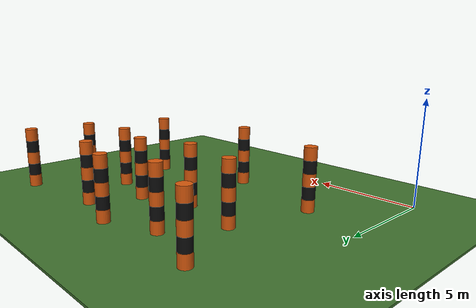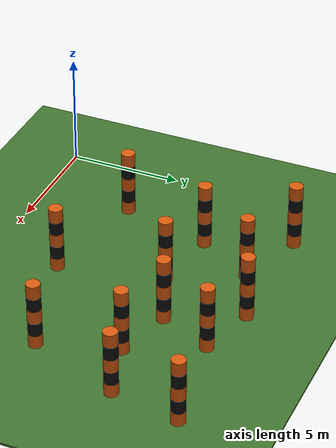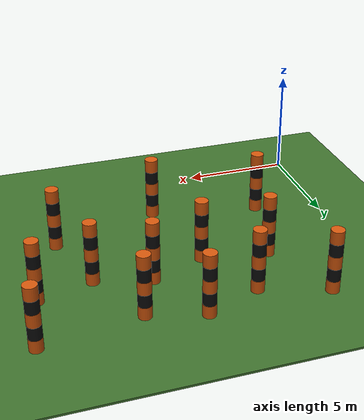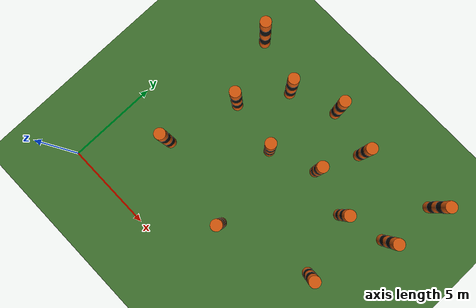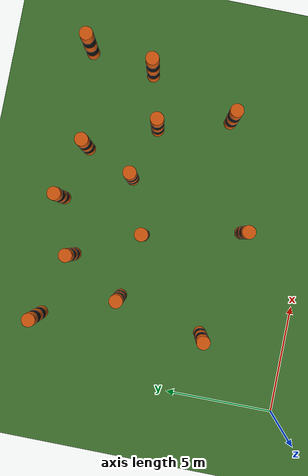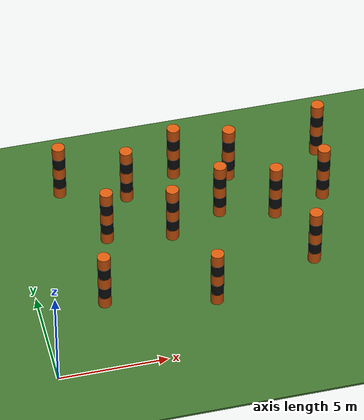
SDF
<sdf version="1.6">
 <world name="medium_forest_goal_13_10_striped_poles">
  <model name="ground">
   <static>1</static>
   <link name="link">
    <collision name="collision"><geometry><box><size>45 35 0.1</size></box></geometry></collision>
    <visual name="visual">
     <geometry><box><size>45 35 0.1</size></box></geometry>
     <material><ambient>0.25 0.45 0.18 1</ambient><diffuse>0.25 0.45 0.18 1</diffuse></material>
    </visual>
   </link>
   <pose>3 2 -0.05 0 0 0</pose>
  </model>
  <model name="striped_obs_12">
   <static>true</static>
   <pose>2.500 11.500 0 0 0 0</pose>
   <link name="link">
    <collision name="collision">
     <pose>0 0 1.5 0 0 0</pose>
     <geometry><cylinder><radius>0.30</radius><length>3.0</length></cylinder></geometry>
     <surface>
      <contact><ode><kp>1000000</kp><kd>100</kd><max_vel>0.01</max_vel><min_depth>0.001</min_depth></ode></contact>
      <friction><ode><mu>1.0</mu><mu2>1.0</mu2></ode></friction>
     </surface>
    </collision>
    <visual name="band_1">
     <pose>0 0 0.3 0 0 0</pose>
     <geometry><cylinder><radius>0.30</radius><length>0.6</length></cylinder></geometry>
     <material>
      <ambient>0.85 0.35 0.05 1</ambient>
      <diffuse>0.85 0.35 0.05 1</diffuse>
      <specular>0.02 0.02 0.02 1</specular>
     </material>
    </visual>
    <visual name="band_2">
     <pose>0 0 0.9 0 0 0</pose>
     <geometry><cylinder><radius>0.30</radius><length>0.6</length></cylinder></geometry>
     <material>
      <ambient>0.05 0.05 0.05 1</ambient>
      <diffuse>0.05 0.05 0.05 1</diffuse>
      <specular>0.02 0.02 0.02 1</specular>
     </material>
    </visual>
    <visual name="band_3">
     <pose>0 0 1.5 0 0 0</pose>
     <geometry><cylinder><radius>0.30</radius><length>0.6</length></cylinder></geometry>
     <material>
      <ambient>0.85 0.35 0.05 1</ambient>
      <diffuse>0.85 0.35 0.05 1</diffuse>
      <specular>0.02 0.02 0.02 1</specular>
     </material>
    </visual>
    <visual name="band_4">
     <pose>0 0 2.1 0 0 0</pose>
     <geometry><cylinder><radius>0.30</radius><length>0.6</length></cylinder></geometry>
     <material>
      <ambient>0.05 0.05 0.05 1</ambient>
      <diffuse>0.05 0.05 0.05 1</diffuse>
      <specular>0.02 0.02 0.02 1</specular>
     </material>
    </visual>
    <visual name="band_5">
     <pose>0 0 2.7 0 0 0</pose>
     <geometry><cylinder><radius>0.30</radius><length>0.6</length></cylinder></geometry>
     <material>
      <ambient>0.85 0.35 0.05 1</ambient>
      <diffuse>0.85 0.35 0.05 1</diffuse>
      <specular>0.02 0.02 0.02 1</specular>
     </material>
    </visual>
   </link>
  </model>
  <model name="striped_obs_13">
   <static>true</static>
   <pose>4.000 8.000 0 0 0 0</pose>
   <link name="link">
    <collision name="collision">
     <pose>0 0 1.5 0 0 0</pose>
     <geometry><cylinder><radius>0.30</radius><length>3.0</length></cylinder></geometry>
     <surface>
      <contact><ode><kp>1000000</kp><kd>100</kd><max_vel>0.01</max_vel><min_depth>0.001</min_depth></ode></contact>
      <friction><ode><mu>1.0</mu><mu2>1.0</mu2></ode></friction>
     </surface>
    </collision>
    <visual name="band_1">
     <pose>0 0 0.3 0 0 0</pose>
     <geometry><cylinder><radius>0.30</radius><length>0.6</length></cylinder></geometry>
     <material>
      <ambient>0.85 0.35 0.05 1</ambient>
      <diffuse>0.85 0.35 0.05 1</diffuse>
      <specular>0.02 0.02 0.02 1</specular>
     </material>
    </visual>
    <visual name="band_2">
     <pose>0 0 0.9 0 0 0</pose>
     <geometry><cylinder><radius>0.30</radius><length>0.6</length></cylinder></geometry>
     <material>
      <ambient>0.05 0.05 0.05 1</ambient>
      <diffuse>0.05 0.05 0.05 1</diffuse>
      <specular>0.02 0.02 0.02 1</specular>
     </material>
    </visual>
    <visual name="band_3">
     <pose>0 0 1.5 0 0 0</pose>
     <geometry><cylinder><radius>0.30</radius><length>0.6</length></cylinder></geometry>
     <material>
      <ambient>0.85 0.35 0.05 1</ambient>
      <diffuse>0.85 0.35 0.05 1</diffuse>
      <specular>0.02 0.02 0.02 1</specular>
     </material>
    </visual>
    <visual name="band_4">
     <pose>0 0 2.1 0 0 0</pose>
     <geometry><cylinder><radius>0.30</radius><length>0.6</length></cylinder></geometry>
     <material>
      <ambient>0.05 0.05 0.05 1</ambient>
      <diffuse>0.05 0.05 0.05 1</diffuse>
      <specular>0.02 0.02 0.02 1</specular>
     </material>
    </visual>
    <visual name="band_5">
     <pose>0 0 2.7 0 0 0</pose>
     <geometry><cylinder><radius>0.30</radius><length>0.6</length></cylinder></geometry>
     <material>
      <ambient>0.85 0.35 0.05 1</ambient>
      <diffuse>0.85 0.35 0.05 1</diffuse>
      <specular>0.02 0.02 0.02 1</specular>
     </material>
    </visual>
   </link>
  </model>
  <model name="striped_obs_14">
   <static>true</static>
   <pose>5.500 10.500 0 0 0 0</pose>
   <link name="link">
    <collision name="collision">
     <pose>0 0 1.5 0 0 0</pose>
     <geometry><cylinder><radius>0.30</radius><length>3.0</length></cylinder></geometry>
     <surface>
      <contact><ode><kp>1000000</kp><kd>100</kd><max_vel>0.01</max_vel><min_depth>0.001</min_depth></ode></contact>
      <friction><ode><mu>1.0</mu><mu2>1.0</mu2></ode></friction>
     </surface>
    </collision>
    <visual name="band_1">
     <pose>0 0 0.3 0 0 0</pose>
     <geometry><cylinder><radius>0.30</radius><length>0.6</length></cylinder></geometry>
     <material>
      <ambient>0.85 0.35 0.05 1</ambient>
      <diffuse>0.85 0.35 0.05 1</diffuse>
      <specular>0.02 0.02 0.02 1</specular>
     </material>
    </visual>
    <visual name="band_2">
     <pose>0 0 0.9 0 0 0</pose>
     <geometry><cylinder><radius>0.30</radius><length>0.6</length></cylinder></geometry>
     <material>
      <ambient>0.05 0.05 0.05 1</ambient>
      <diffuse>0.05 0.05 0.05 1</diffuse>
      <specular>0.02 0.02 0.02 1</specular>
     </material>
    </visual>
    <visual name="band_3">
     <pose>0 0 1.5 0 0 0</pose>
     <geometry><cylinder><radius>0.30</radius><length>0.6</length></cylinder></geometry>
     <material>
      <ambient>0.85 0.35 0.05 1</ambient>
      <diffuse>0.85 0.35 0.05 1</diffuse>
      <specular>0.02 0.02 0.02 1</specular>
     </material>
    </visual>
    <visual name="band_4">
     <pose>0 0 2.1 0 0 0</pose>
     <geometry><cylinder><radius>0.30</radius><length>0.6</length></cylinder></geometry>
     <material>
      <ambient>0.05 0.05 0.05 1</ambient>
      <diffuse>0.05 0.05 0.05 1</diffuse>
      <specular>0.02 0.02 0.02 1</specular>
     </material>
    </visual>
    <visual name="band_5">
     <pose>0 0 2.7 0 0 0</pose>
     <geometry><cylinder><radius>0.30</radius><length>0.6</length></cylinder></geometry>
     <material>
      <ambient>0.85 0.35 0.05 1</ambient>
      <diffuse>0.85 0.35 0.05 1</diffuse>
      <specular>0.02 0.02 0.02 1</specular>
     </material>
    </visual>
   </link>
  </model>
  <model name="striped_obs_15">
   <static>true</static>
   <pose>7.000 7.500 0 0 0 0</pose>
   <link name="link">
    <collision name="collision">
     <pose>0 0 1.5 0 0 0</pose>
     <geometry><cylinder><radius>0.30</radius><length>3.0</length></cylinder></geometry>
     <surface>
      <contact><ode><kp>1000000</kp><kd>100</kd><max_vel>0.01</max_vel><min_depth>0.001</min_depth></ode></contact>
      <friction><ode><mu>1.0</mu><mu2>1.0</mu2></ode></friction>
     </surface>
    </collision>
    <visual name="band_1">
     <pose>0 0 0.3 0 0 0</pose>
     <geometry><cylinder><radius>0.30</radius><length>0.6</length></cylinder></geometry>
     <material>
      <ambient>0.85 0.35 0.05 1</ambient>
      <diffuse>0.85 0.35 0.05 1</diffuse>
      <specular>0.02 0.02 0.02 1</specular>
     </material>
    </visual>
    <visual name="band_2">
     <pose>0 0 0.9 0 0 0</pose>
     <geometry><cylinder><radius>0.30</radius><length>0.6</length></cylinder></geometry>
     <material>
      <ambient>0.05 0.05 0.05 1</ambient>
      <diffuse>0.05 0.05 0.05 1</diffuse>
      <specular>0.02 0.02 0.02 1</specular>
     </material>
    </visual>
    <visual name="band_3">
     <pose>0 0 1.5 0 0 0</pose>
     <geometry><cylinder><radius>0.30</radius><length>0.6</length></cylinder></geometry>
     <material>
      <ambient>0.85 0.35 0.05 1</ambient>
      <diffuse>0.85 0.35 0.05 1</diffuse>
      <specular>0.02 0.02 0.02 1</specular>
     </material>
    </visual>
    <visual name="band_4">
     <pose>0 0 2.1 0 0 0</pose>
     <geometry><cylinder><radius>0.30</radius><length>0.6</length></cylinder></geometry>
     <material>
      <ambient>0.05 0.05 0.05 1</ambient>
      <diffuse>0.05 0.05 0.05 1</diffuse>
      <specular>0.02 0.02 0.02 1</specular>
     </material>
    </visual>
    <visual name="band_5">
     <pose>0 0 2.7 0 0 0</pose>
     <geometry><cylinder><radius>0.30</radius><length>0.6</length></cylinder></geometry>
     <material>
      <ambient>0.85 0.35 0.05 1</ambient>
      <diffuse>0.85 0.35 0.05 1</diffuse>
      <specular>0.02 0.02 0.02 1</specular>
     </material>
    </visual>
   </link>
  </model>
  <model name="striped_obs_16">
   <static>true</static>
   <pose>8.000 11.500 0 0 0 0</pose>
   <link name="link">
    <collision name="collision">
     <pose>0 0 1.5 0 0 0</pose>
     <geometry><cylinder><radius>0.30</radius><length>3.0</length></cylinder></geometry>
     <surface>
      <contact><ode><kp>1000000</kp><kd>100</kd><max_vel>0.01</max_vel><min_depth>0.001</min_depth></ode></contact>
      <friction><ode><mu>1.0</mu><mu2>1.0</mu2></ode></friction>
     </surface>
    </collision>
    <visual name="band_1">
     <pose>0 0 0.3 0 0 0</pose>
     <geometry><cylinder><radius>0.30</radius><length>0.6</length></cylinder></geometry>
     <material>
      <ambient>0.85 0.35 0.05 1</ambient>
      <diffuse>0.85 0.35 0.05 1</diffuse>
      <specular>0.02 0.02 0.02 1</specular>
     </material>
    </visual>
    <visual name="band_2">
     <pose>0 0 0.9 0 0 0</pose>
     <geometry><cylinder><radius>0.30</radius><length>0.6</length></cylinder></geometry>
     <material>
      <ambient>0.05 0.05 0.05 1</ambient>
      <diffuse>0.05 0.05 0.05 1</diffuse>
      <specular>0.02 0.02 0.02 1</specular>
     </material>
    </visual>
    <visual name="band_3">
     <pose>0 0 1.5 0 0 0</pose>
     <geometry><cylinder><radius>0.30</radius><length>0.6</length></cylinder></geometry>
     <material>
      <ambient>0.85 0.35 0.05 1</ambient>
      <diffuse>0.85 0.35 0.05 1</diffuse>
      <specular>0.02 0.02 0.02 1</specular>
     </material>
    </visual>
    <visual name="band_4">
     <pose>0 0 2.1 0 0 0</pose>
     <geometry><cylinder><radius>0.30</radius><length>0.6</length></cylinder></geometry>
     <material>
      <ambient>0.05 0.05 0.05 1</ambient>
      <diffuse>0.05 0.05 0.05 1</diffuse>
      <specular>0.02 0.02 0.02 1</specular>
     </material>
    </visual>
    <visual name="band_5">
     <pose>0 0 2.7 0 0 0</pose>
     <geometry><cylinder><radius>0.30</radius><length>0.6</length></cylinder></geometry>
     <material>
      <ambient>0.85 0.35 0.05 1</ambient>
      <diffuse>0.85 0.35 0.05 1</diffuse>
      <specular>0.02 0.02 0.02 1</specular>
     </material>
    </visual>
   </link>
  </model>
  <model name="striped_obs_17">
   <static>true</static>
   <pose>9.500 8.500 0 0 0 0</pose>
   <link name="link">
    <collision name="collision">
     <pose>0 0 1.5 0 0 0</pose>
     <geometry><cylinder><radius>0.30</radius><length>3.0</length></cylinder></geometry>
     <surface>
      <contact><ode><kp>1000000</kp><kd>100</kd><max_vel>0.01</max_vel><min_depth>0.001</min_depth></ode></contact>
      <friction><ode><mu>1.0</mu><mu2>1.0</mu2></ode></friction>
     </surface>
    </collision>
    <visual name="band_1">
     <pose>0 0 0.3 0 0 0</pose>
     <geometry><cylinder><radius>0.30</radius><length>0.6</length></cylinder></geometry>
     <material>
      <ambient>0.85 0.35 0.05 1</ambient>
      <diffuse>0.85 0.35 0.05 1</diffuse>
      <specular>0.02 0.02 0.02 1</specular>
     </material>
    </visual>
    <visual name="band_2">
     <pose>0 0 0.9 0 0 0</pose>
     <geometry><cylinder><radius>0.30</radius><length>0.6</length></cylinder></geometry>
     <material>
      <ambient>0.05 0.05 0.05 1</ambient>
      <diffuse>0.05 0.05 0.05 1</diffuse>
      <specular>0.02 0.02 0.02 1</specular>
     </material>
    </visual>
    <visual name="band_3">
     <pose>0 0 1.5 0 0 0</pose>
     <geometry><cylinder><radius>0.30</radius><length>0.6</length></cylinder></geometry>
     <material>
      <ambient>0.85 0.35 0.05 1</ambient>
      <diffuse>0.85 0.35 0.05 1</diffuse>
      <specular>0.02 0.02 0.02 1</specular>
     </material>
    </visual>
    <visual name="band_4">
     <pose>0 0 2.1 0 0 0</pose>
     <geometry><cylinder><radius>0.30</radius><length>0.6</length></cylinder></geometry>
     <material>
      <ambient>0.05 0.05 0.05 1</ambient>
      <diffuse>0.05 0.05 0.05 1</diffuse>
      <specular>0.02 0.02 0.02 1</specular>
     </material>
    </visual>
    <visual name="band_5">
     <pose>0 0 2.7 0 0 0</pose>
     <geometry><cylinder><radius>0.30</radius><length>0.6</length></cylinder></geometry>
     <material>
      <ambient>0.85 0.35 0.05 1</ambient>
      <diffuse>0.85 0.35 0.05 1</diffuse>
      <specular>0.02 0.02 0.02 1</specular>
     </material>
    </visual>
   </link>
  </model>
  <model name="striped_obs_18">
   <static>true</static>
   <pose>10.500 10.800 0 0 0 0</pose>
   <link name="link">
    <collision name="collision">
     <pose>0 0 1.5 0 0 0</pose>
     <geometry><cylinder><radius>0.30</radius><length>3.0</length></cylinder></geometry>
     <surface>
      <contact><ode><kp>1000000</kp><kd>100</kd><max_vel>0.01</max_vel><min_depth>0.001</min_depth></ode></contact>
      <friction><ode><mu>1.0</mu><mu2>1.0</mu2></ode></friction>
     </surface>
    </collision>
    <visual name="band_1">
     <pose>0 0 0.3 0 0 0</pose>
     <geometry><cylinder><radius>0.30</radius><length>0.6</length></cylinder></geometry>
     <material>
      <ambient>0.85 0.35 0.05 1</ambient>
      <diffuse>0.85 0.35 0.05 1</diffuse>
      <specular>0.02 0.02 0.02 1</specular>
     </material>
    </visual>
    <visual name="band_2">
     <pose>0 0 0.9 0 0 0</pose>
     <geometry><cylinder><radius>0.30</radius><length>0.6</length></cylinder></geometry>
     <material>
      <ambient>0.05 0.05 0.05 1</ambient>
      <diffuse>0.05 0.05 0.05 1</diffuse>
      <specular>0.02 0.02 0.02 1</specular>
     </material>
    </visual>
    <visual name="band_3">
     <pose>0 0 1.5 0 0 0</pose>
     <geometry><cylinder><radius>0.30</radius><length>0.6</length></cylinder></geometry>
     <material>
      <ambient>0.85 0.35 0.05 1</ambient>
      <diffuse>0.85 0.35 0.05 1</diffuse>
      <specular>0.02 0.02 0.02 1</specular>
     </material>
    </visual>
    <visual name="band_4">
     <pose>0 0 2.1 0 0 0</pose>
     <geometry><cylinder><radius>0.30</radius><length>0.6</length></cylinder></geometry>
     <material>
      <ambient>0.05 0.05 0.05 1</ambient>
      <diffuse>0.05 0.05 0.05 1</diffuse>
      <specular>0.02 0.02 0.02 1</specular>
     </material>
    </visual>
    <visual name="band_5">
     <pose>0 0 2.7 0 0 0</pose>
     <geometry><cylinder><radius>0.30</radius><length>0.6</length></cylinder></geometry>
     <material>
      <ambient>0.85 0.35 0.05 1</ambient>
      <diffuse>0.85 0.35 0.05 1</diffuse>
      <specular>0.02 0.02 0.02 1</specular>
     </material>
    </visual>
   </link>
  </model>
  <model name="striped_obs_19">
   <static>true</static>
   <pose>12.000 7.800 0 0 0 0</pose>
   <link name="link">
    <collision name="collision">
     <pose>0 0 1.5 0 0 0</pose>
     <geometry><cylinder><radius>0.30</radius><length>3.0</length></cylinder></geometry>
     <surface>
      <contact><ode><kp>1000000</kp><kd>100</kd><max_vel>0.01</max_vel><min_depth>0.001</min_depth></ode></contact>
      <friction><ode><mu>1.0</mu><mu2>1.0</mu2></ode></friction>
     </surface>
    </collision>
    <visual name="band_1">
     <pose>0 0 0.3 0 0 0</pose>
     <geometry><cylinder><radius>0.30</radius><length>0.6</length></cylinder></geometry>
     <material>
      <ambient>0.85 0.35 0.05 1</ambient>
      <diffuse>0.85 0.35 0.05 1</diffuse>
      <specular>0.02 0.02 0.02 1</specular>
     </material>
    </visual>
    <visual name="band_2">
     <pose>0 0 0.9 0 0 0</pose>
     <geometry><cylinder><radius>0.30</radius><length>0.6</length></cylinder></geometry>
     <material>
      <ambient>0.05 0.05 0.05 1</ambient>
      <diffuse>0.05 0.05 0.05 1</diffuse>
      <specular>0.02 0.02 0.02 1</specular>
     </material>
    </visual>
    <visual name="band_3">
     <pose>0 0 1.5 0 0 0</pose>
     <geometry><cylinder><radius>0.30</radius><length>0.6</length></cylinder></geometry>
     <material>
      <ambient>0.85 0.35 0.05 1</ambient>
      <diffuse>0.85 0.35 0.05 1</diffuse>
      <specular>0.02 0.02 0.02 1</specular>
     </material>
    </visual>
    <visual name="band_4">
     <pose>0 0 2.1 0 0 0</pose>
     <geometry><cylinder><radius>0.30</radius><length>0.6</length></cylinder></geometry>
     <material>
      <ambient>0.05 0.05 0.05 1</ambient>
      <diffuse>0.05 0.05 0.05 1</diffuse>
      <specular>0.02 0.02 0.02 1</specular>
     </material>
    </visual>
    <visual name="band_5">
     <pose>0 0 2.7 0 0 0</pose>
     <geometry><cylinder><radius>0.30</radius><length>0.6</length></cylinder></geometry>
     <material>
      <ambient>0.85 0.35 0.05 1</ambient>
      <diffuse>0.85 0.35 0.05 1</diffuse>
      <specular>0.02 0.02 0.02 1</specular>
     </material>
    </visual>
   </link>
  </model>
  <model name="striped_obs_21">
   <static>true</static>
   <pose>14.500 8.500 0 0 0 0</pose>
   <link name="link">
    <collision name="collision">
     <pose>0 0 1.5 0 0 0</pose>
     <geometry><cylinder><radius>0.30</radius><length>3.0</length></cylinder></geometry>
     <surface>
      <contact><ode><kp>1000000</kp><kd>100</kd><max_vel>0.01</max_vel><min_depth>0.001</min_depth></ode></contact>
      <friction><ode><mu>1.0</mu><mu2>1.0</mu2></ode></friction>
     </surface>
    </collision>
    <visual name="band_1">
     <pose>0 0 0.3 0 0 0</pose>
     <geometry><cylinder><radius>0.30</radius><length>0.6</length></cylinder></geometry>
     <material>
      <ambient>0.85 0.35 0.05 1</ambient>
      <diffuse>0.85 0.35 0.05 1</diffuse>
      <specular>0.02 0.02 0.02 1</specular>
     </material>
    </visual>
    <visual name="band_2">
     <pose>0 0 0.9 0 0 0</pose>
     <geometry><cylinder><radius>0.30</radius><length>0.6</length></cylinder></geometry>
     <material>
      <ambient>0.05 0.05 0.05 1</ambient>
      <diffuse>0.05 0.05 0.05 1</diffuse>
      <specular>0.02 0.02 0.02 1</specular>
     </material>
    </visual>
    <visual name="band_3">
     <pose>0 0 1.5 0 0 0</pose>
     <geometry><cylinder><radius>0.30</radius><length>0.6</length></cylinder></geometry>
     <material>
      <ambient>0.85 0.35 0.05 1</ambient>
      <diffuse>0.85 0.35 0.05 1</diffuse>
      <specular>0.02 0.02 0.02 1</specular>
     </material>
    </visual>
    <visual name="band_4">
     <pose>0 0 2.1 0 0 0</pose>
     <geometry><cylinder><radius>0.30</radius><length>0.6</length></cylinder></geometry>
     <material>
      <ambient>0.05 0.05 0.05 1</ambient>
      <diffuse>0.05 0.05 0.05 1</diffuse>
      <specular>0.02 0.02 0.02 1</specular>
     </material>
    </visual>
    <visual name="band_5">
     <pose>0 0 2.7 0 0 0</pose>
     <geometry><cylinder><radius>0.30</radius><length>0.6</length></cylinder></geometry>
     <material>
      <ambient>0.85 0.35 0.05 1</ambient>
      <diffuse>0.85 0.35 0.05 1</diffuse>
      <specular>0.02 0.02 0.02 1</specular>
     </material>
    </visual>
   </link>
  </model>
  <model name="striped_obs_22">
   <static>true</static>
   <pose>15.000 11.500 0 0 0 0</pose>
   <link name="link">
    <collision name="collision">
     <pose>0 0 1.5 0 0 0</pose>
     <geometry><cylinder><radius>0.30</radius><length>3.0</length></cylinder></geometry>
     <surface>
      <contact><ode><kp>1000000</kp><kd>100</kd><max_vel>0.01</max_vel><min_depth>0.001</min_depth></ode></contact>
      <friction><ode><mu>1.0</mu><mu2>1.0</mu2></ode></friction>
     </surface>
    </collision>
    <visual name="band_1">
     <pose>0 0 0.3 0 0 0</pose>
     <geometry><cylinder><radius>0.30</radius><length>0.6</length></cylinder></geometry>
     <material>
      <ambient>0.85 0.35 0.05 1</ambient>
      <diffuse>0.85 0.35 0.05 1</diffuse>
      <specular>0.02 0.02 0.02 1</specular>
     </material>
    </visual>
    <visual name="band_2">
     <pose>0 0 0.9 0 0 0</pose>
     <geometry><cylinder><radius>0.30</radius><length>0.6</length></cylinder></geometry>
     <material>
      <ambient>0.05 0.05 0.05 1</ambient>
      <diffuse>0.05 0.05 0.05 1</diffuse>
      <specular>0.02 0.02 0.02 1</specular>
     </material>
    </visual>
    <visual name="band_3">
     <pose>0 0 1.5 0 0 0</pose>
     <geometry><cylinder><radius>0.30</radius><length>0.6</length></cylinder></geometry>
     <material>
      <ambient>0.85 0.35 0.05 1</ambient>
      <diffuse>0.85 0.35 0.05 1</diffuse>
      <specular>0.02 0.02 0.02 1</specular>
     </material>
    </visual>
    <visual name="band_4">
     <pose>0 0 2.1 0 0 0</pose>
     <geometry><cylinder><radius>0.30</radius><length>0.6</length></cylinder></geometry>
     <material>
      <ambient>0.05 0.05 0.05 1</ambient>
      <diffuse>0.05 0.05 0.05 1</diffuse>
      <specular>0.02 0.02 0.02 1</specular>
     </material>
    </visual>
    <visual name="band_5">
     <pose>0 0 2.7 0 0 0</pose>
     <geometry><cylinder><radius>0.30</radius><length>0.6</length></cylinder></geometry>
     <material>
      <ambient>0.85 0.35 0.05 1</ambient>
      <diffuse>0.85 0.35 0.05 1</diffuse>
      <specular>0.02 0.02 0.02 1</specular>
     </material>
    </visual>
   </link>
  </model>
  <model name="striped_obs_25">
   <static>true</static>
   <pose>3.000 4.000 0 0 0 0</pose>
   <link name="link">
    <collision name="collision">
     <pose>0 0 1.5 0 0 0</pose>
     <geometry><cylinder><radius>0.30</radius><length>3.0</length></cylinder></geometry>
     <surface>
      <contact><ode><kp>1000000</kp><kd>100</kd><max_vel>0.01</max_vel><min_depth>0.001</min_depth></ode></contact>
      <friction><ode><mu>1.0</mu><mu2>1.0</mu2></ode></friction>
     </surface>
    </collision>
    <visual name="band_1">
     <pose>0 0 0.3 0 0 0</pose>
     <geometry><cylinder><radius>0.30</radius><length>0.6</length></cylinder></geometry>
     <material>
      <ambient>0.85 0.35 0.05 1</ambient>
      <diffuse>0.85 0.35 0.05 1</diffuse>
      <specular>0.02 0.02 0.02 1</specular>
     </material>
    </visual>
    <visual name="band_2">
     <pose>0 0 0.9 0 0 0</pose>
     <geometry><cylinder><radius>0.30</radius><length>0.6</length></cylinder></geometry>
     <material>
      <ambient>0.05 0.05 0.05 1</ambient>
      <diffuse>0.05 0.05 0.05 1</diffuse>
      <specular>0.02 0.02 0.02 1</specular>
     </material>
    </visual>
    <visual name="band_3">
     <pose>0 0 1.5 0 0 0</pose>
     <geometry><cylinder><radius>0.30</radius><length>0.6</length></cylinder></geometry>
     <material>
      <ambient>0.85 0.35 0.05 1</ambient>
      <diffuse>0.85 0.35 0.05 1</diffuse>
      <specular>0.02 0.02 0.02 1</specular>
     </material>
    </visual>
    <visual name="band_4">
     <pose>0 0 2.1 0 0 0</pose>
     <geometry><cylinder><radius>0.30</radius><length>0.6</length></cylinder></geometry>
     <material>
      <ambient>0.05 0.05 0.05 1</ambient>
      <diffuse>0.05 0.05 0.05 1</diffuse>
      <specular>0.02 0.02 0.02 1</specular>
     </material>
    </visual>
    <visual name="band_5">
     <pose>0 0 2.7 0 0 0</pose>
     <geometry><cylinder><radius>0.30</radius><length>0.6</length></cylinder></geometry>
     <material>
      <ambient>0.85 0.35 0.05 1</ambient>
      <diffuse>0.85 0.35 0.05 1</diffuse>
      <specular>0.02 0.02 0.02 1</specular>
     </material>
    </visual>
   </link>
  </model>
  <model name="striped_obs_26">
   <static>true</static>
   <pose>8.000 3.000 0 0 0 0</pose>
   <link name="link">
    <collision name="collision">
     <pose>0 0 1.5 0 0 0</pose>
     <geometry><cylinder><radius>0.30</radius><length>3.0</length></cylinder></geometry>
     <surface>
      <contact><ode><kp>1000000</kp><kd>100</kd><max_vel>0.01</max_vel><min_depth>0.001</min_depth></ode></contact>
      <friction><ode><mu>1.0</mu><mu2>1.0</mu2></ode></friction>
     </surface>
    </collision>
    <visual name="band_1">
     <pose>0 0 0.3 0 0 0</pose>
     <geometry><cylinder><radius>0.30</radius><length>0.6</length></cylinder></geometry>
     <material>
      <ambient>0.85 0.35 0.05 1</ambient>
      <diffuse>0.85 0.35 0.05 1</diffuse>
      <specular>0.02 0.02 0.02 1</specular>
     </material>
    </visual>
    <visual name="band_2">
     <pose>0 0 0.9 0 0 0</pose>
     <geometry><cylinder><radius>0.30</radius><length>0.6</length></cylinder></geometry>
     <material>
      <ambient>0.05 0.05 0.05 1</ambient>
      <diffuse>0.05 0.05 0.05 1</diffuse>
      <specular>0.02 0.02 0.02 1</specular>
     </material>
    </visual>
    <visual name="band_3">
     <pose>0 0 1.5 0 0 0</pose>
     <geometry><cylinder><radius>0.30</radius><length>0.6</length></cylinder></geometry>
     <material>
      <ambient>0.85 0.35 0.05 1</ambient>
      <diffuse>0.85 0.35 0.05 1</diffuse>
      <specular>0.02 0.02 0.02 1</specular>
     </material>
    </visual>
    <visual name="band_4">
     <pose>0 0 2.1 0 0 0</pose>
     <geometry><cylinder><radius>0.30</radius><length>0.6</length></cylinder></geometry>
     <material>
      <ambient>0.05 0.05 0.05 1</ambient>
      <diffuse>0.05 0.05 0.05 1</diffuse>
      <specular>0.02 0.02 0.02 1</specular>
     </material>
    </visual>
    <visual name="band_5">
     <pose>0 0 2.7 0 0 0</pose>
     <geometry><cylinder><radius>0.30</radius><length>0.6</length></cylinder></geometry>
     <material>
      <ambient>0.85 0.35 0.05 1</ambient>
      <diffuse>0.85 0.35 0.05 1</diffuse>
      <specular>0.02 0.02 0.02 1</specular>
     </material>
    </visual>
   </link>
  </model>
  <model name="striped_obs_27">
   <static>true</static>
   <pose>13.000 4.500 0 0 0 0</pose>
   <link name="link">
    <collision name="collision">
     <pose>0 0 1.5 0 0 0</pose>
     <geometry><cylinder><radius>0.30</radius><length>3.0</length></cylinder></geometry>
     <surface>
      <contact><ode><kp>1000000</kp><kd>100</kd><max_vel>0.01</max_vel><min_depth>0.001</min_depth></ode></contact>
      <friction><ode><mu>1.0</mu><mu2>1.0</mu2></ode></friction>
     </surface>
    </collision>
    <visual name="band_1">
     <pose>0 0 0.3 0 0 0</pose>
     <geometry><cylinder><radius>0.30</radius><length>0.6</length></cylinder></geometry>
     <material>
      <ambient>0.85 0.35 0.05 1</ambient>
      <diffuse>0.85 0.35 0.05 1</diffuse>
      <specular>0.02 0.02 0.02 1</specular>
     </material>
    </visual>
    <visual name="band_2">
     <pose>0 0 0.9 0 0 0</pose>
     <geometry><cylinder><radius>0.30</radius><length>0.6</length></cylinder></geometry>
     <material>
      <ambient>0.05 0.05 0.05 1</ambient>
      <diffuse>0.05 0.05 0.05 1</diffuse>
      <specular>0.02 0.02 0.02 1</specular>
     </material>
    </visual>
    <visual name="band_3">
     <pose>0 0 1.5 0 0 0</pose>
     <geometry><cylinder><radius>0.30</radius><length>0.6</length></cylinder></geometry>
     <material>
      <ambient>0.85 0.35 0.05 1</ambient>
      <diffuse>0.85 0.35 0.05 1</diffuse>
      <specular>0.02 0.02 0.02 1</specular>
     </material>
    </visual>
    <visual name="band_4">
     <pose>0 0 2.1 0 0 0</pose>
     <geometry><cylinder><radius>0.30</radius><length>0.6</length></cylinder></geometry>
     <material>
      <ambient>0.05 0.05 0.05 1</ambient>
      <diffuse>0.05 0.05 0.05 1</diffuse>
      <specular>0.02 0.02 0.02 1</specular>
     </material>
    </visual>
    <visual name="band_5">
     <pose>0 0 2.7 0 0 0</pose>
     <geometry><cylinder><radius>0.30</radius><length>0.6</length></cylinder></geometry>
     <material>
      <ambient>0.85 0.35 0.05 1</ambient>
      <diffuse>0.85 0.35 0.05 1</diffuse>
      <specular>0.02 0.02 0.02 1</specular>
     </material>
    </visual>
   </link>
  </model>
 </world>
</sdf>
